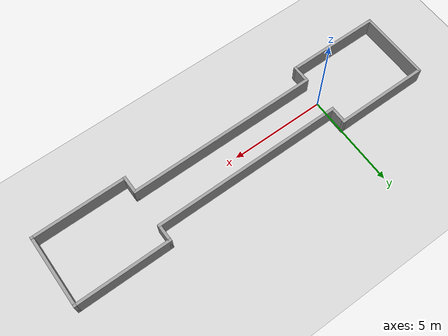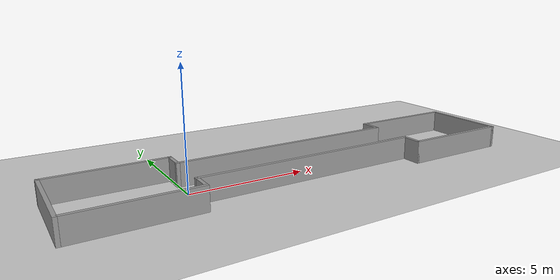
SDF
<sdf version="1.6">
 <world name="default">
  <light name="sun" type="directional">
   <pose>0 0 10 0 -0 0</pose>
   <diffuse>0.8 0.8 0.8 1</diffuse>
   <specular>0.1 0.1 0.1 1</specular>
   <attenuation>
    <range>1000</range>
    <constant>0.9</constant>
    <linear>0.01</linear>
    <quadratic>0.001</quadratic>
   </attenuation>
   <direction>-0.5 0.5 -1</direction>
  </light>
  <model name="ground_plane">
   <static>1</static>
   <link name="link">
    <collision name="collision">
     <geometry><plane><normal>0 0 1</normal><size>100 100</size></plane></geometry>
     <surface><friction><ode><mu>100</mu><mu2>50</mu2></ode></friction></surface>
    </collision>
    <visual name="visual">
     <cast_shadows>0</cast_shadows>
     <geometry><plane><normal>0 0 1</normal><size>100 100</size></plane></geometry>
     <material>
      <script><uri>file://media/materials/scripts/gazebo.material</uri><name>Gazebo/Grey</name></script>
     </material>
    </visual>
   </link>
  </model>
  <gravity>0 0 -9.8</gravity>
  <magnetic_field>6e-06 2.3e-05 -4.2e-05</magnetic_field>
  <atmosphere type="adiabatic"/>
  <physics name="default_physics" default="0" type="ode">
   <max_step_size>0.001</max_step_size>
   <real_time_factor>1</real_time_factor>
   <real_time_update_rate>1000</real_time_update_rate>
  </physics>
  <scene><ambient>0.4 0.4 0.4 1</ambient><background>0.7 0.7 0.7 1</background><shadows>1</shadows></scene>
  <spherical_coordinates>
   <surface_model>EARTH_WGS84</surface_model>
   <latitude_deg>0</latitude_deg>
   <longitude_deg>0</longitude_deg>
   <elevation>0</elevation>
   <heading_deg>0</heading_deg>
  </spherical_coordinates>
  <model name="long_corridor">
   <pose>5 0 0 0 -0 0</pose>
   <link name="Wall_1">
    <collision name="Wall_1_Collision">
     <geometry><box><size>10.1501 0.15 1</size></box></geometry>
     <pose>0 0 0.5 0 -0 0</pose>
    </collision>
    <visual name="Wall_1_Visual">
     <pose>0 0 0.5 0 -0 0</pose>
     <geometry><box><size>10.1501 0.15 1</size></box></geometry>
     <material>
      <script><uri>file://media/materials/scripts/gazebo.material</uri><name>Gazebo/Grey</name></script>
      <ambient>1 1 1 1</ambient>
     </material>
    </visual>
    <pose>0 -1 0 0 -0 0</pose>
   </link>
   <link name="Wall_18">
    <collision name="Wall_18_Collision">
     <geometry><box><size>10.15 0.15 1</size></box></geometry>
     <pose>0 0 0.5 0 -0 0</pose>
    </collision>
    <visual name="Wall_18_Visual">
     <pose>0 0 0.5 0 -0 0</pose>
     <geometry><box><size>10.15 0.15 1</size></box></geometry>
     <material>
      <script><uri>file://media/materials/scripts/gazebo.material</uri><name>Gazebo/Grey</name></script>
      <ambient>1 1 1 1</ambient>
     </material>
    </visual>
    <pose>0 1 0 0 -0 0</pose>
   </link>
   <link name="Wall_28">
    <collision name="Wall_28_Collision">
     <geometry><box><size>1 0.15 1</size></box></geometry>
     <pose>0 0 0.5 0 -0 0</pose>
    </collision>
    <visual name="Wall_28_Visual">
     <pose>0 0 0.5 0 -0 0</pose>
     <geometry><box><size>1 0.15 1</size></box></geometry>
     <material>
      <script><uri>file://media/materials/scripts/gazebo.material</uri><name>Gazebo/Grey</name></script>
      <ambient>1 1 1 1</ambient>
     </material>
    </visual>
    <pose>-5 -1.425 0 0 0 -1.5708</pose>
   </link>
   <link name="Wall_31">
    <collision name="Wall_31_Collision">
     <geometry><box><size>1 0.15 1</size></box></geometry>
     <pose>0 0 0.5 0 -0 0</pose>
    </collision>
    <visual name="Wall_31_Visual">
     <pose>0 0 0.5 0 -0 0</pose>
     <geometry><box><size>1 0.15 1</size></box></geometry>
     <material>
      <script><uri>file://media/materials/scripts/gazebo.material</uri><name>Gazebo/Grey</name></script>
      <ambient>1 1 1 1</ambient>
     </material>
    </visual>
    <pose>-5 1.425 0 0 -0 1.5708</pose>
   </link>
   <link name="Wall_38">
    <collision name="Wall_38_Collision">
     <geometry><box><size>5 0.15 1</size></box></geometry>
     <pose>0 0 0.5 0 -0 0</pose>
    </collision>
    <visual name="Wall_38_Visual">
     <pose>0 0 0.5 0 -0 0</pose>
     <geometry><box><size>5 0.15 1</size></box></geometry>
     <material>
      <script><uri>file://media/materials/scripts/gazebo.material</uri><name>Gazebo/Grey</name></script>
      <ambient>1 1 1 1</ambient>
     </material>
    </visual>
    <pose>-7.425 -1.85 0 0 -0 3.14159</pose>
   </link>
   <link name="Wall_40">
    <collision name="Wall_40_Collision">
     <geometry><box><size>5 0.15 1</size></box></geometry>
     <pose>0 0 0.5 0 -0 0</pose>
    </collision>
    <visual name="Wall_40_Visual">
     <pose>0 0 0.5 0 -0 0</pose>
     <geometry><box><size>5 0.15 1</size></box></geometry>
     <material>
      <script><uri>file://media/materials/scripts/gazebo.material</uri><name>Gazebo/Grey</name></script>
      <ambient>1 1 1 1</ambient>
     </material>
    </visual>
    <pose>-7.425 1.85 0 0 -0 3.14159</pose>
   </link>
   <link name="Wall_41">
    <collision name="Wall_41_Collision">
     <geometry><box><size>3.85 0.15 1</size></box></geometry>
     <pose>0 0 0.5 0 -0 0</pose>
    </collision>
    <visual name="Wall_41_Visual">
     <pose>0 0 0.5 0 -0 0</pose>
     <geometry><box><size>3.85 0.15 1</size></box></geometry>
     <material>
      <script><uri>file://media/materials/scripts/gazebo.material</uri><name>Gazebo/Grey</name></script>
      <ambient>1 1 1 1</ambient>
     </material>
    </visual>
    <pose>-9.85 0 0 0 0 -1.5708</pose>
   </link>
   <link name="Wall_43">
    <collision name="Wall_43_Collision">
     <geometry><box><size>1 0.15 1</size></box></geometry>
     <pose>0 0 0.5 0 -0 0</pose>
    </collision>
    <visual name="Wall_43_Visual">
     <pose>0 0 0.5 0 -0 0</pose>
     <geometry><box><size>1 0.15 1</size></box></geometry>
     <material>
      <script><uri>file://media/materials/scripts/gazebo.material</uri><name>Gazebo/Grey</name></script>
      <ambient>1 1 1 1</ambient>
     </material>
    </visual>
    <pose>5 -1.425 0 0 0 -1.5708</pose>
   </link>
   <link name="Wall_45">
    <collision name="Wall_45_Collision">
     <geometry><box><size>1 0.15 1</size></box></geometry>
     <pose>0 0 0.5 0 -0 0</pose>
    </collision>
    <visual name="Wall_45_Visual">
     <pose>0 0 0.5 0 -0 0</pose>
     <geometry><box><size>1 0.15 1</size></box></geometry>
     <material>
      <script><uri>file://media/materials/scripts/gazebo.material</uri><name>Gazebo/Grey</name></script>
      <ambient>1 1 1 1</ambient>
     </material>
    </visual>
    <pose>5 1.425 0 0 -0 1.5708</pose>
   </link>
   <link name="Wall_47">
    <collision name="Wall_47_Collision">
     <geometry><box><size>5 0.15 1</size></box></geometry>
     <pose>0 0 0.5 0 -0 0</pose>
    </collision>
    <visual name="Wall_47_Visual">
     <pose>0 0 0.5 0 -0 0</pose>
     <geometry><box><size>5 0.15 1</size></box></geometry>
     <material>
      <script><uri>file://media/materials/scripts/gazebo.material</uri><name>Gazebo/Grey</name></script>
      <ambient>1 1 1 1</ambient>
     </material>
    </visual>
    <pose>7.425 1.85 0 0 -0 0</pose>
   </link>
   <link name="Wall_49">
    <collision name="Wall_49_Collision">
     <geometry><box><size>5 0.15 1</size></box></geometry>
     <pose>0 0 0.5 0 -0 0</pose>
    </collision>
    <visual name="Wall_49_Visual">
     <pose>0 0 0.5 0 -0 0</pose>
     <geometry><box><size>5 0.15 1</size></box></geometry>
     <material>
      <script><uri>file://media/materials/scripts/gazebo.material</uri><name>Gazebo/Grey</name></script>
      <ambient>1 1 1 1</ambient>
     </material>
    </visual>
    <pose>7.425 -1.85 0 0 -0 0</pose>
   </link>
   <link name="Wall_50">
    <collision name="Wall_50_Collision">
     <geometry><box><size>3.85 0.15 1</size></box></geometry>
     <pose>0 0 0.5 0 -0 0</pose>
    </collision>
    <visual name="Wall_50_Visual">
     <pose>0 0 0.5 0 -0 0</pose>
     <geometry><box><size>3.85 0.15 1</size></box></geometry>
     <material>
      <script><uri>file://media/materials/scripts/gazebo.material</uri><name>Gazebo/Grey</name></script>
      <ambient>1 1 1 1</ambient>
     </material>
    </visual>
    <pose>9.85 0 0 0 -0 1.5708</pose>
   </link>
   <static>1</static>
  </model>
 </world>
</sdf>
